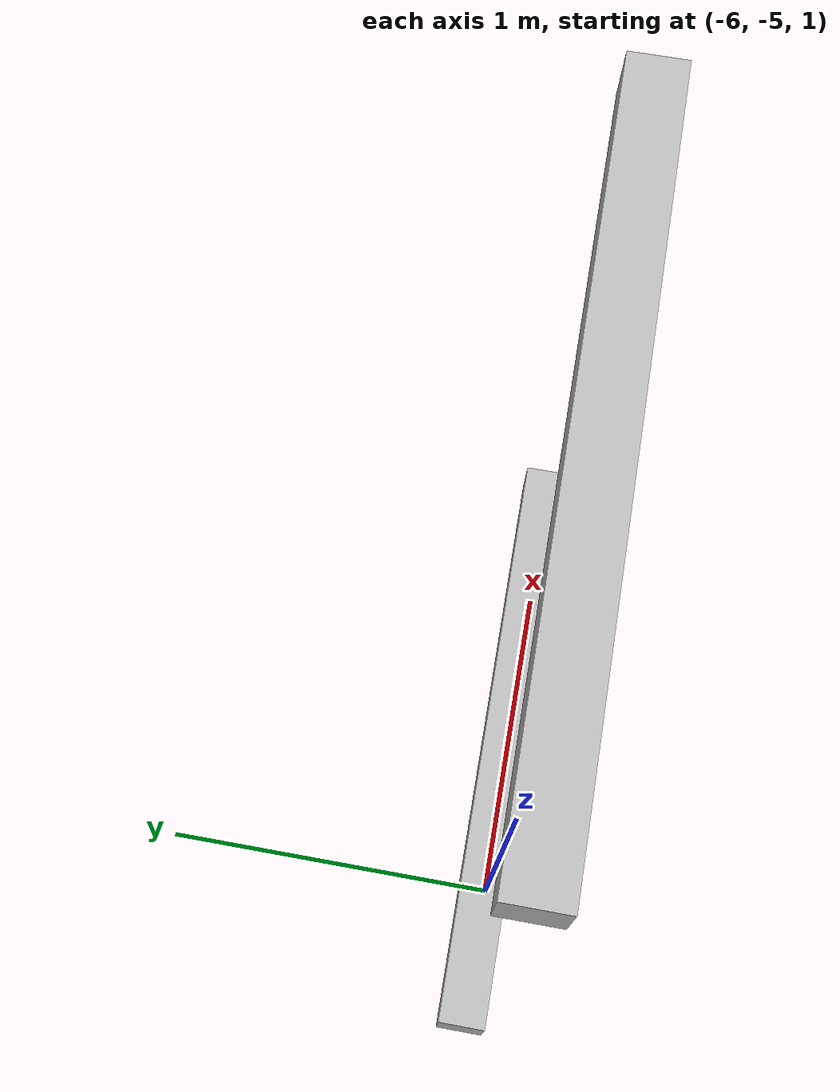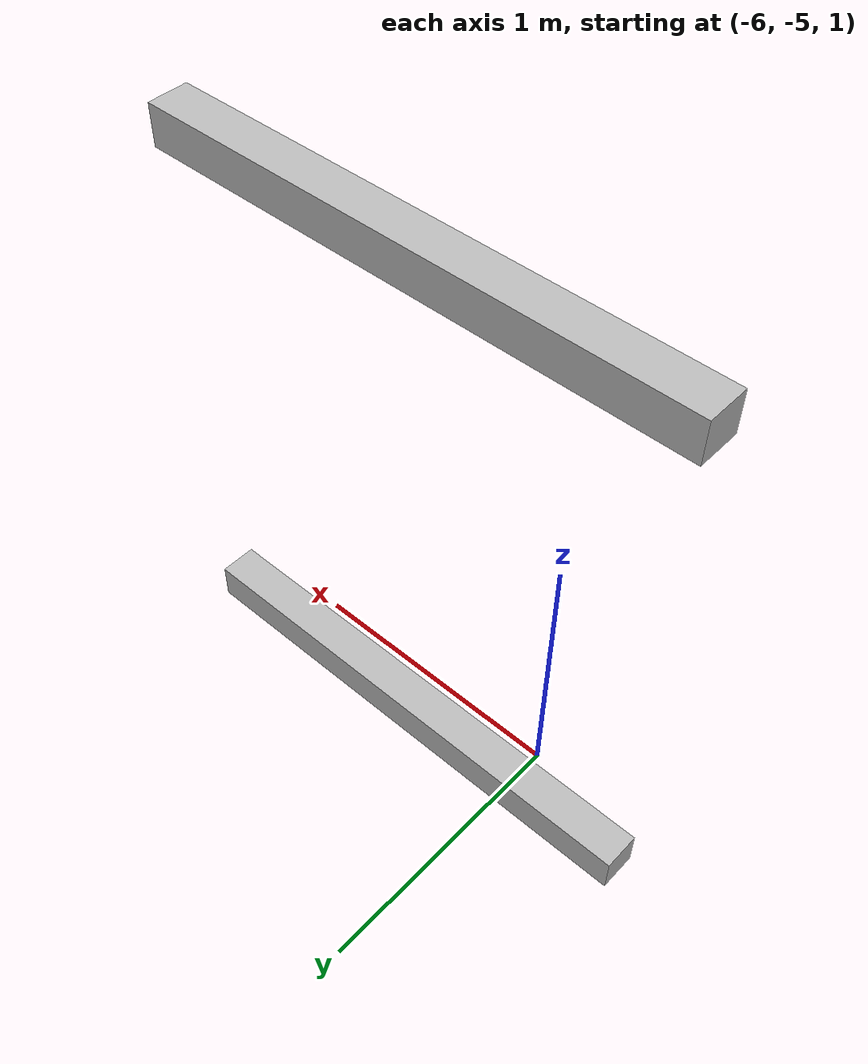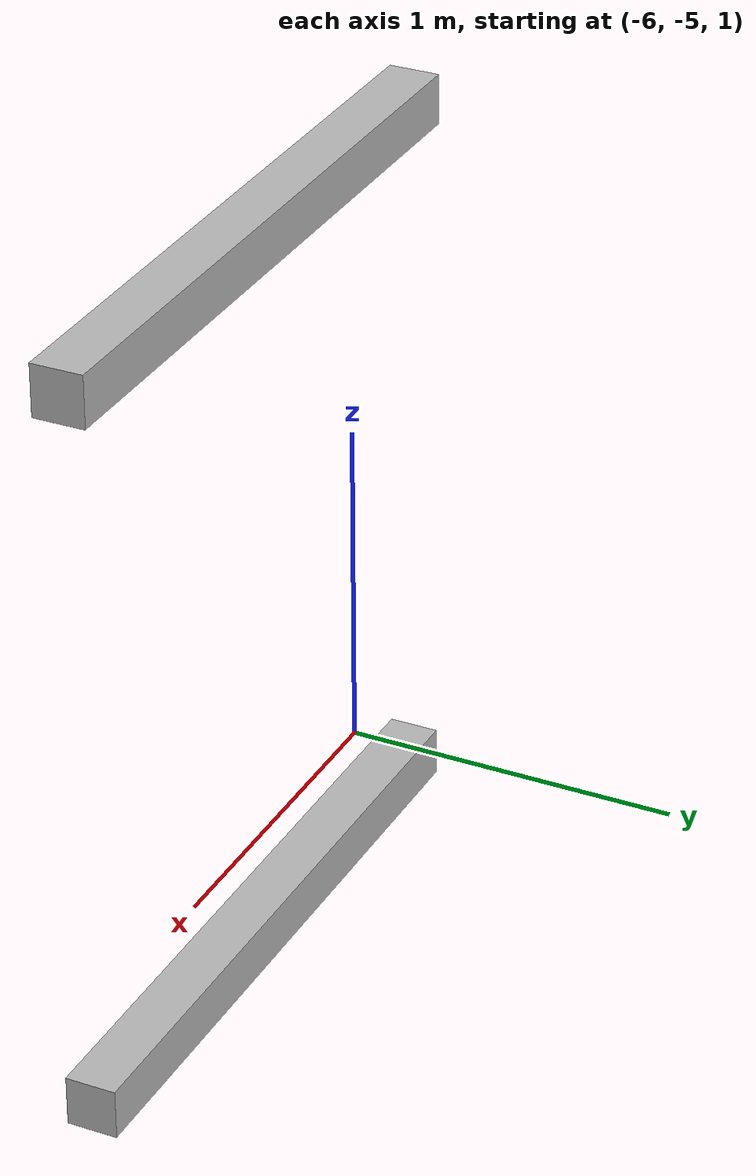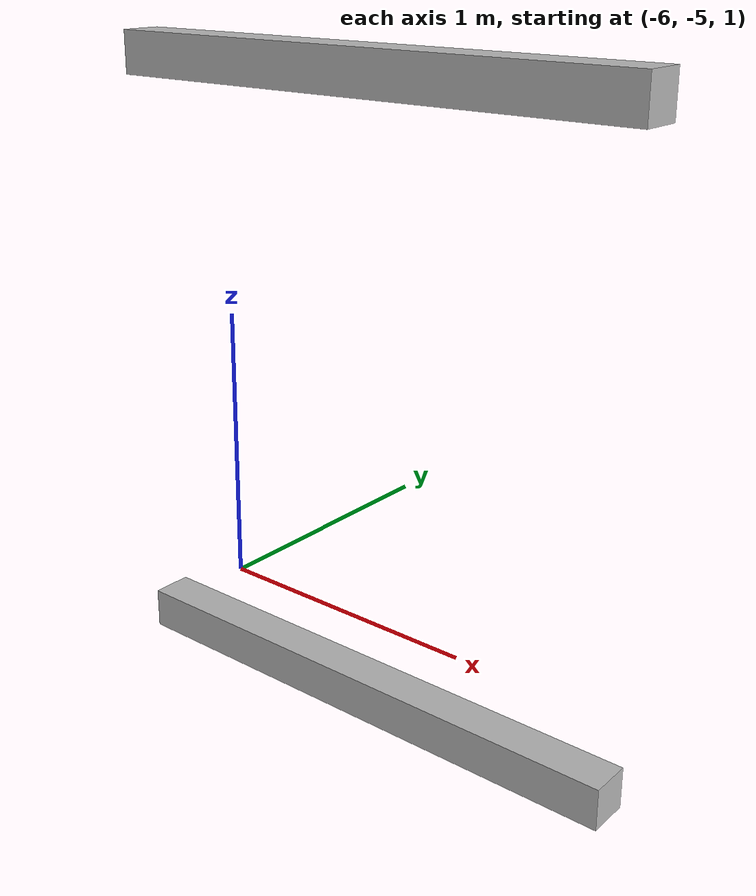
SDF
<sdf version="1.7">
 <world name="default">
  <model name="orthogonal_747_2.000.15_TS">
   <static>1</static>
   <link name="x_link_1_0_0">
    <inertial>
     <mass>1</mass>
     <inertia>
      <ixx>0.166667</ixx>
      <ixy>0</ixy>
      <ixz>0</ixz>
      <iyy>0.166667</iyy>
      <iyz>0</iyz>
      <izz>0.166667</izz>
     </inertia>
    </inertial>
    <pose>1.075 0 3.225 0 -0 0</pose>
    <visual name="visual_0">
     <laser_retro>750</laser_retro>
     <geometry><box><size>2 1e-06 0.15</size></box></geometry>
     <material>
      <script><name>Gazebo/Grey</name><uri>file://media/materials/scripts/gazebo.material</uri></script>
      <shader type="pixel"><normal_map>__default__</normal_map></shader>
      <ambient>0.678 0.498 0.659 1</ambient>
      <diffuse>0.7 0.7 0.7 1</diffuse>
      <specular>0.01 0.01 0.01 1</specular>
      <emissive>0 0 0 1</emissive>
     </material>
     <pose>0 -0.075 0 0 -0 0</pose>
     <transparency>1</transparency>
    </visual>
    <visual name="visual_1">
     <laser_retro>751</laser_retro>
     <geometry><box><size>2 1e-06 0.15</size></box></geometry>
     <material>
      <script><name>Gazebo/Grey</name><uri>file://media/materials/scripts/gazebo.material</uri></script>
      <shader type="pixel"><normal_map>__default__</normal_map></shader>
      <ambient>0.447 0.624 0.812 1</ambient>
      <diffuse>0.7 0.7 0.7 1</diffuse>
      <specular>0.01 0.01 0.01 1</specular>
      <emissive>0 0 0 1</emissive>
     </material>
     <pose>0 0.075 0 0 -0 0</pose>
     <transparency>1</transparency>
    </visual>
    <visual name="visual_2">
     <laser_retro>752</laser_retro>
     <geometry><box><size>2 0.15 1e-06</size></box></geometry>
     <material>
      <script><name>Gazebo/Grey</name><uri>file://media/materials/scripts/gazebo.material</uri></script>
      <shader type="pixel"><normal_map>__default__</normal_map></shader>
      <ambient>0.988 0.686 0.243 1</ambient>
      <diffuse>0.7 0.7 0.7 1</diffuse>
      <specular>0.01 0.01 0.01 1</specular>
      <emissive>0 0 0 1</emissive>
     </material>
     <pose>0 0 -0.075 0 -0 0</pose>
     <transparency>1</transparency>
    </visual>
    <visual name="visual_3">
     <laser_retro>753</laser_retro>
     <geometry><box><size>1e-06 0.15 0.15</size></box></geometry>
     <material>
      <script><name>Gazebo/Grey</name><uri>file://media/materials/scripts/gazebo.material</uri></script>
      <shader type="pixel"><normal_map>__default__</normal_map></shader>
      <ambient>0.988 0.914 0.31 1</ambient>
      <diffuse>0.7 0.7 0.7 1</diffuse>
      <specular>0.01 0.01 0.01 1</specular>
      <emissive>0 0 0 1</emissive>
     </material>
     <pose>1 0 0 0 -0 0</pose>
     <transparency>1</transparency>
    </visual>
    <visual name="visual_4">
     <laser_retro>754</laser_retro>
     <geometry><box><size>2 0.15 1e-06</size></box></geometry>
     <material>
      <script><name>Gazebo/Grey</name><uri>file://media/materials/scripts/gazebo.material</uri></script>
      <shader type="pixel"><normal_map>__default__</normal_map></shader>
      <ambient>0.937 0.161 0.161 1</ambient>
      <diffuse>0.7 0.7 0.7 1</diffuse>
      <specular>0.01 0.01 0.01 1</specular>
      <emissive>0 0 0 1</emissive>
     </material>
     <pose>0 0 0.075 0 -0 0</pose>
     <transparency>1</transparency>
    </visual>
    <visual name="visual_5">
     <laser_retro>755</laser_retro>
     <geometry><box><size>1e-06 0.15 0.15</size></box></geometry>
     <material>
      <script><name>Gazebo/Grey</name><uri>file://media/materials/scripts/gazebo.material</uri></script>
      <shader type="pixel"><normal_map>__default__</normal_map></shader>
      <ambient>0.541 0.886 0.204 1</ambient>
      <diffuse>0.7 0.7 0.7 1</diffuse>
      <specular>0.01 0.01 0.01 1</specular>
      <emissive>0 0 0 1</emissive>
     </material>
     <pose>-1 0 0 0 -0 0</pose>
     <transparency>1</transparency>
    </visual>
    <visual name="visual_texture">
     <geometry><box><size>1.9998 0.149985 0.149985</size></box></geometry>
     <material>
      <script>
       <uri>model://BASE_MODELS/simple_block_v2_textured/materials/scripts</uri>
       <uri>model://BASE_MODELS/simple_block_v2_textured/materials/textures</uri>
       <name>metal</name>
      </script>
     </material>
     <laser_retro>756</laser_retro>
    </visual>
    <collision name="collision">
     <geometry><box><size>2 0.15 0.15</size></box></geometry>
     <surface>
      <friction>
       <ode><mu>1</mu><mu2>1</mu2><fdir1>0 0 0</fdir1><slip1>0</slip1><slip2>0</slip2></ode>
       <torsional>
        <coefficient>1</coefficient>
        <patch_radius>0</patch_radius>
        <surface_radius>0</surface_radius>
        <use_patch_radius>1</use_patch_radius>
        <ode><slip>0</slip></ode>
       </torsional>
      </friction>
      <bounce><restitution_coefficient>0</restitution_coefficient><threshold>1e+06</threshold></bounce>
      <contact>
       <collide_without_contact>0</collide_without_contact>
       <collide_without_contact_bitmask>1</collide_without_contact_bitmask>
       <collide_bitmask>1</collide_bitmask>
       <ode>
        <soft_cfm>0</soft_cfm>
        <soft_erp>0.2</soft_erp>
        <kp>1e+13</kp>
        <kd>1</kd>
        <max_vel>0.01</max_vel>
        <min_depth>0</min_depth>
       </ode>
       <bullet>
        <split_impulse>1</split_impulse>
        <split_impulse_penetration_threshold>-0.01</split_impulse_penetration_threshold>
        <soft_cfm>0</soft_cfm>
        <soft_erp>0.2</soft_erp>
        <kp>1e+13</kp>
        <kd>1</kd>
       </bullet>
      </contact>
     </surface>
    </collision>
   </link>
   <link name="x_link_2_0_0">
    <inertial>
     <mass>1</mass>
     <inertia>
      <ixx>0.166667</ixx>
      <ixy>0</ixy>
      <ixz>0</ixz>
      <iyy>0.166667</iyy>
      <iyz>0</iyz>
      <izz>0.166667</izz>
     </inertia>
    </inertial>
    <pose>1.075 0 5.375 0 -0 0</pose>
    <visual name="visual_0">
     <laser_retro>1653</laser_retro>
     <geometry><box><size>2 1e-06 0.15</size></box></geometry>
     <material>
      <script><name>Gazebo/Grey</name><uri>file://media/materials/scripts/gazebo.material</uri></script>
      <shader type="pixel"><normal_map>__default__</normal_map></shader>
      <ambient>0.678 0.498 0.659 1</ambient>
      <diffuse>0.7 0.7 0.7 1</diffuse>
      <specular>0.01 0.01 0.01 1</specular>
      <emissive>0 0 0 1</emissive>
     </material>
     <pose>0 -0.075 0 0 -0 0</pose>
     <transparency>1</transparency>
    </visual>
    <visual name="visual_1">
     <laser_retro>1654</laser_retro>
     <geometry><box><size>2 1e-06 0.15</size></box></geometry>
     <material>
      <script><name>Gazebo/Grey</name><uri>file://media/materials/scripts/gazebo.material</uri></script>
      <shader type="pixel"><normal_map>__default__</normal_map></shader>
      <ambient>0.447 0.624 0.812 1</ambient>
      <diffuse>0.7 0.7 0.7 1</diffuse>
      <specular>0.01 0.01 0.01 1</specular>
      <emissive>0 0 0 1</emissive>
     </material>
     <pose>0 0.075 0 0 -0 0</pose>
     <transparency>1</transparency>
    </visual>
    <visual name="visual_2">
     <laser_retro>1655</laser_retro>
     <geometry><box><size>2 0.15 1e-06</size></box></geometry>
     <material>
      <script><name>Gazebo/Grey</name><uri>file://media/materials/scripts/gazebo.material</uri></script>
      <shader type="pixel"><normal_map>__default__</normal_map></shader>
      <ambient>0.988 0.686 0.243 1</ambient>
      <diffuse>0.7 0.7 0.7 1</diffuse>
      <specular>0.01 0.01 0.01 1</specular>
      <emissive>0 0 0 1</emissive>
     </material>
     <pose>0 0 -0.075 0 -0 0</pose>
     <transparency>1</transparency>
    </visual>
    <visual name="visual_3">
     <laser_retro>1656</laser_retro>
     <geometry><box><size>1e-06 0.15 0.15</size></box></geometry>
     <material>
      <script><name>Gazebo/Grey</name><uri>file://media/materials/scripts/gazebo.material</uri></script>
      <shader type="pixel"><normal_map>__default__</normal_map></shader>
      <ambient>0.988 0.914 0.31 1</ambient>
      <diffuse>0.7 0.7 0.7 1</diffuse>
      <specular>0.01 0.01 0.01 1</specular>
      <emissive>0 0 0 1</emissive>
     </material>
     <pose>1 0 0 0 -0 0</pose>
     <transparency>1</transparency>
    </visual>
    <visual name="visual_4">
     <laser_retro>1657</laser_retro>
     <geometry><box><size>2 0.15 1e-06</size></box></geometry>
     <material>
      <script><name>Gazebo/Grey</name><uri>file://media/materials/scripts/gazebo.material</uri></script>
      <shader type="pixel"><normal_map>__default__</normal_map></shader>
      <ambient>0.937 0.161 0.161 1</ambient>
      <diffuse>0.7 0.7 0.7 1</diffuse>
      <specular>0.01 0.01 0.01 1</specular>
      <emissive>0 0 0 1</emissive>
     </material>
     <pose>0 0 0.075 0 -0 0</pose>
     <transparency>1</transparency>
    </visual>
    <visual name="visual_5">
     <laser_retro>1658</laser_retro>
     <geometry><box><size>1e-06 0.15 0.15</size></box></geometry>
     <material>
      <script><name>Gazebo/Grey</name><uri>file://media/materials/scripts/gazebo.material</uri></script>
      <shader type="pixel"><normal_map>__default__</normal_map></shader>
      <ambient>0.541 0.886 0.204 1</ambient>
      <diffuse>0.7 0.7 0.7 1</diffuse>
      <specular>0.01 0.01 0.01 1</specular>
      <emissive>0 0 0 1</emissive>
     </material>
     <pose>-1 0 0 0 -0 0</pose>
     <transparency>1</transparency>
    </visual>
    <visual name="visual_texture">
     <geometry><box><size>1.9998 0.149985 0.149985</size></box></geometry>
     <material>
      <script>
       <uri>model://BASE_MODELS/simple_block_v2_textured/materials/scripts</uri>
       <uri>model://BASE_MODELS/simple_block_v2_textured/materials/textures</uri>
       <name>metal</name>
      </script>
     </material>
     <laser_retro>1659</laser_retro>
    </visual>
    <collision name="collision">
     <geometry><box><size>2 0.15 0.15</size></box></geometry>
     <surface>
      <friction>
       <ode><mu>1</mu><mu2>1</mu2><fdir1>0 0 0</fdir1><slip1>0</slip1><slip2>0</slip2></ode>
       <torsional>
        <coefficient>1</coefficient>
        <patch_radius>0</patch_radius>
        <surface_radius>0</surface_radius>
        <use_patch_radius>1</use_patch_radius>
        <ode><slip>0</slip></ode>
       </torsional>
      </friction>
      <bounce><restitution_coefficient>0</restitution_coefficient><threshold>1e+06</threshold></bounce>
      <contact>
       <collide_without_contact>0</collide_without_contact>
       <collide_without_contact_bitmask>1</collide_without_contact_bitmask>
       <collide_bitmask>1</collide_bitmask>
       <ode>
        <soft_cfm>0</soft_cfm>
        <soft_erp>0.2</soft_erp>
        <kp>1e+13</kp>
        <kd>1</kd>
        <max_vel>0.01</max_vel>
        <min_depth>0</min_depth>
       </ode>
       <bullet>
        <split_impulse>1</split_impulse>
        <split_impulse_penetration_threshold>-0.01</split_impulse_penetration_threshold>
        <soft_cfm>0</soft_cfm>
        <soft_erp>0.2</soft_erp>
        <kp>1e+13</kp>
        <kd>1</kd>
       </bullet>
      </contact>
     </surface>
    </collision>
   </link>
   <pose>-6.47624 -5 -2.5 0 -0 0</pose>
  </model>
 </world>
</sdf>
